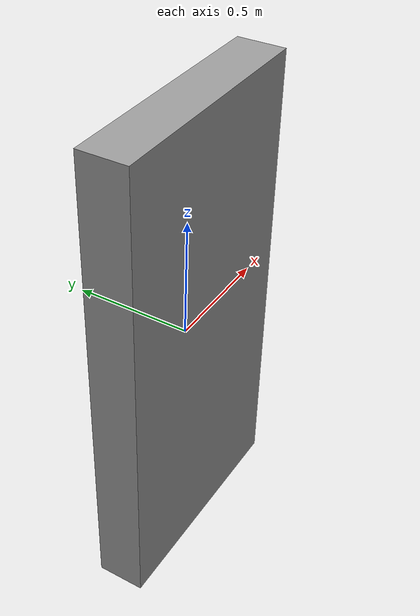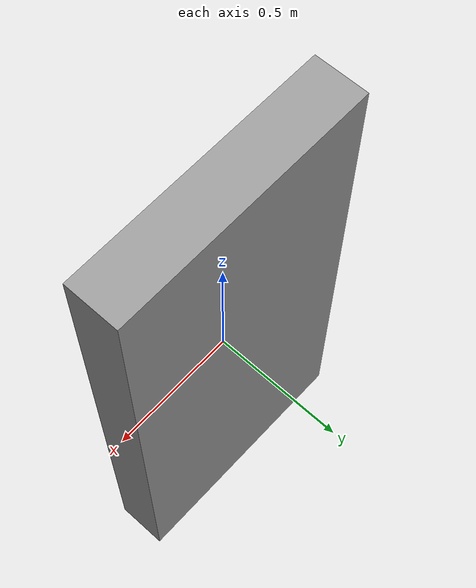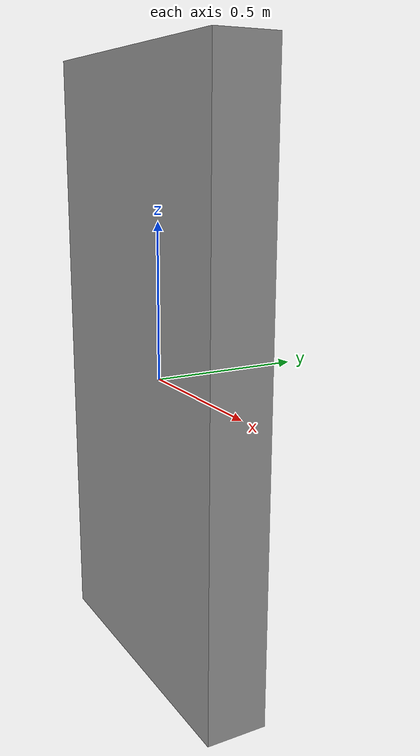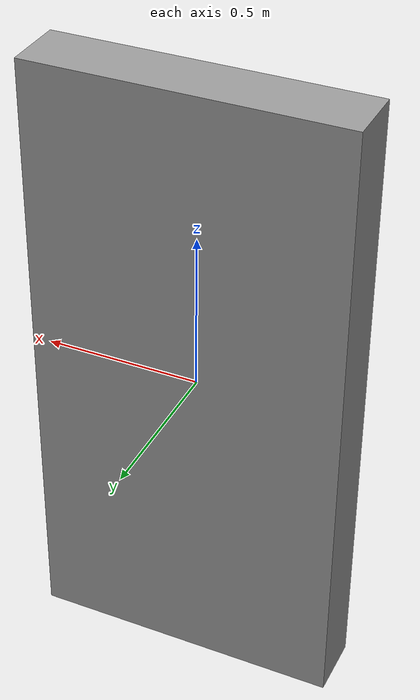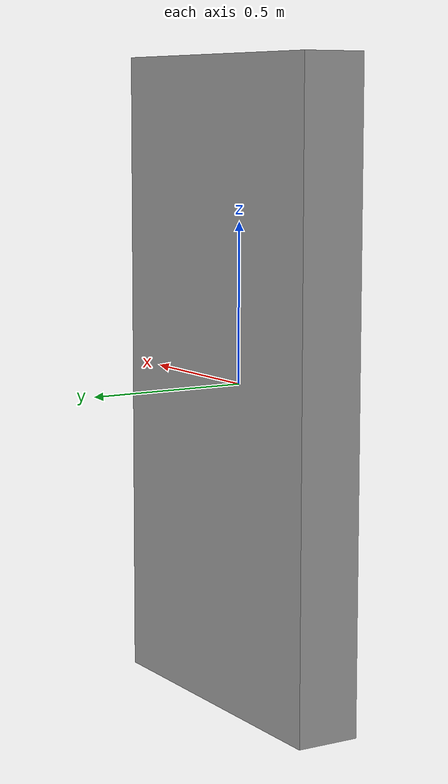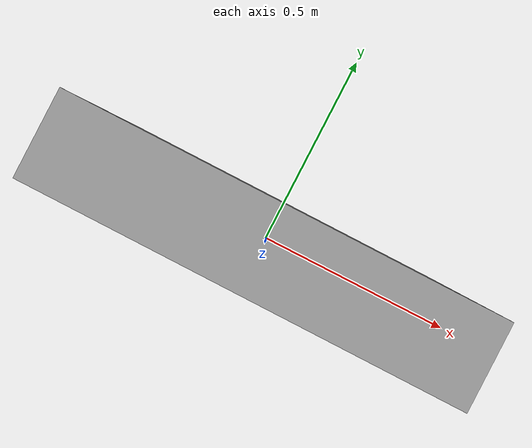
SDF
<?xml version='1.0'?>
<sdf version="1.5">
    <model name="wall_1">
        <static>true</static>
        <link name="link">
        <collision name="collision">
            <geometry>
                <box>
                    <!-- default thickness = 0.2  -->
                    <!-- default width = 1.0  -->
                    <!-- default height = 2.0  -->
                    <size>1.0 0.2 2.0</size>
                </box>
            </geometry>
        </collision>
        <visual name="visual">
            <cast_shadows>false</cast_shadows>
            <geometry>
            <box>
                <size>1.0 0.2 2.0</size>
            </box>
            </geometry>
            <material>
                <script>
                    <uri>model://grey_wall/materials/scripts</uri>
                    <uri>model://grey_wall/materials/textures</uri>
                    <name>Gazebo_Grey</name>
                </script>
            </material>
        </visual>
        </link>
    </model>
</sdf>
